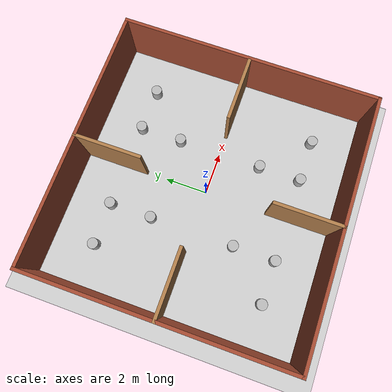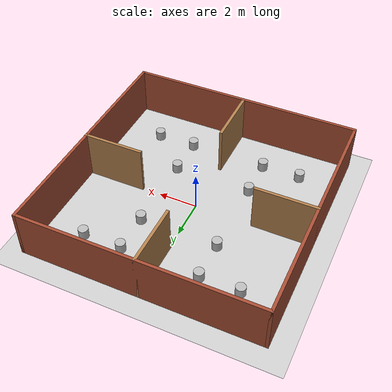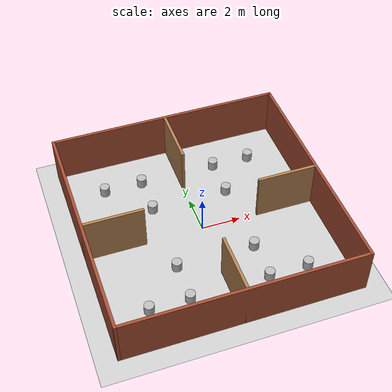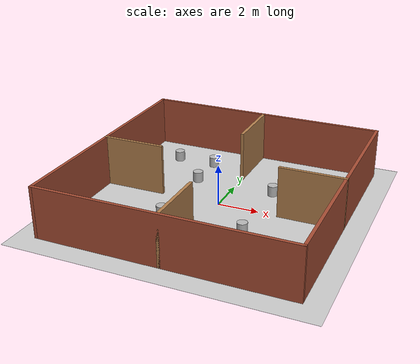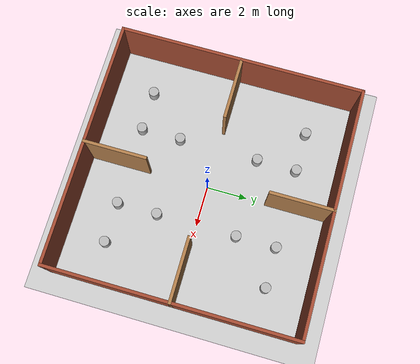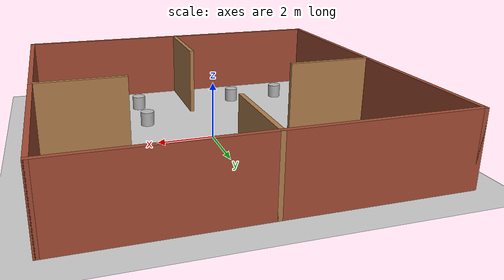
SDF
<?xml version="1.0"?>
<sdf version="1.6">
  <world name="default">

    <!-- Enable changing model pose in gazebo -->
    <plugin name="gazebo_ros_state" filename="libgazebo_ros_state.so">
      <ros>
        <namespace>/gazebo</namespace>
        <argument>--ros-args --remap model_states:=model_states_gazebo</argument>
        <argument>--ros-args --remap link_states:=link_states_gazebo</argument>
      </ros>
      <update_rate>50.0</update_rate>
    </plugin>

    <include>
      <uri>model://ground_plane</uri>
    </include>

    <include>
      <uri>model://sun</uri>
    </include>

    <scene>
      <shadows>false</shadows>
    </scene>

    <gui fullscreen='0'>
      <camera name='user_camera'>
        <pose frame=''>0.319654 -0.235002 9.29441 0 1.5138 0.009599</pose>
        <view_controller>orbit</view_controller>
        <projection_type>perspective</projection_type>
      </camera>
    </gui>

    <physics type="ode">
      <real_time_update_rate>1000.0</real_time_update_rate>
      <max_step_size>0.001</max_step_size>
      <real_time_factor>1</real_time_factor>
      <ode>
        <solver>
          <type>quick</type>
          <iters>150</iters>
          <precon_iters>0</precon_iters>
          <sor>1.400000</sor>
          <use_dynamic_moi_rescaling>1</use_dynamic_moi_rescaling>
        </solver>
        <constraints>
          <cfm>0.00001</cfm>
          <erp>0.2</erp>
          <contact_max_correcting_vel>2000.000000</contact_max_correcting_vel>
          <contact_surface_layer>0.01000</contact_surface_layer>
        </constraints>
      </ode>
    </physics>

    <model name="td7_training">
      <static>1</static>
      <include>
        <uri>model://td7_training</uri>
      </include>
    </model>

    <model name="obstacle_1">
      <pose>2 2 0 0 0 0</pose>
      <include>
        <uri>model://obstacle</uri>
      </include>
    </model>

    <model name="obstacle_2">
      <pose>2 -2 0 0 0 0</pose>
      <include>
        <uri>model://obstacle</uri>
      </include>
    </model>

    <model name="obstacle_3">
      <pose>-2 -2 0 0 0 0</pose>
      <include>
        <uri>model://obstacle</uri>
      </include>
    </model>

    <model name="obstacle_4">
      <pose>-2 2 0 0 0 0</pose>
      <include>
        <uri>model://obstacle</uri>
      </include>
    </model>

    <model name="obstacle_5">
      <pose>4 4 0 0 0 0</pose>
      <include>
        <uri>model://obstacle</uri>
      </include>
    </model>

    <model name="obstacle_6">
      <pose>4 -4 0 0 0 0</pose>
      <include>
        <uri>model://obstacle</uri>
      </include>
    </model>

    <model name="obstacle_7">
      <pose>-4 -4 0 0 0 0</pose>
      <include>
        <uri>model://obstacle</uri>
      </include>
    </model>

    <model name="obstacle_8">
      <pose>-4 4 0 0 0 0</pose>
      <include>
        <uri>model://obstacle</uri>
      </include>
    </model>

    <model name="obstacle_9">
      <pose>2 4 0 0 0 0</pose>
      <include>
        <uri>model://obstacle</uri>
      </include>
    </model>

    <model name="obstacle_10">
      <pose>2 -4 0 0 0 0</pose>
      <include>
        <uri>model://obstacle</uri>
      </include>
    </model>

    <model name="obstacle_11">
      <pose>-2 -4 0 0 0 0</pose>
      <include>
        <uri>model://obstacle</uri>
      </include>
    </model>

    <model name="obstacle_12">
      <pose>-2 4 0 0 0 0</pose>
      <include>
        <uri>model://obstacle</uri>
      </include>
    </model>

  </world>
</sdf>

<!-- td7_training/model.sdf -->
<sdf version='1.7'>
  <model name='td7_training'>
    <pose>0 0 0 0 -0 0</pose>
    <link name='Wall_0'>
      <collision name='Wall_0_Collision'>
        <geometry>
          <box>
            <size>12.15 0.15 2.5</size>
          </box>
        </geometry>
        <pose>0 0 1.25 0 -0 0</pose>
      </collision>
      <visual name='Wall_0_Visual'>
        <pose>0 0 1.25 0 -0 0</pose>
        <geometry>
          <box>
            <size>12.15 0.15 2.5</size>
          </box>
        </geometry>
        <material>
          <script>
            <uri>file://media/materials/scripts/gazebo.material</uri>
            <name>Gazebo/Bricks</name>
          </script>
          <ambient>1 1 1 1</ambient>
        </material>
        <meta>
          <layer>0</layer>
        </meta>
      </visual>
      <pose>0 6 0 0 -0 0</pose>
    </link>
    <link name='Wall_1'>
      <collision name='Wall_1_Collision'>
        <geometry>
          <box>
            <size>12.15 0.15 2.5</size>
          </box>
        </geometry>
        <pose>0 0 1.25 0 -0 0</pose>
      </collision>
      <visual name='Wall_1_Visual'>
        <pose>0 0 1.25 0 -0 0</pose>
        <geometry>
          <box>
            <size>12.15 0.15 2.5</size>
          </box>
        </geometry>
        <material>
          <script>
            <uri>file://media/materials/scripts/gazebo.material</uri>
            <name>Gazebo/Bricks</name>
          </script>
          <ambient>1 1 1 1</ambient>
        </material>
        <meta>
          <layer>0</layer>
        </meta>
      </visual>
      <pose>6 0 0 0 -0 -1.5708</pose>
    </link>
    <link name='Wall_11'>
      <collision name='Wall_11_Collision'>
        <geometry>
          <box>
            <size>3.15 0.15 2.5</size>
          </box>
        </geometry>
        <pose>0 0 1.25 0 -0 0</pose>
      </collision>
      <visual name='Wall_11_Visual'>
        <pose>0 0 1.25 0 -0 0</pose>
        <geometry>
          <box>
            <size>3.15 0.15 2.5</size>
          </box>
        </geometry>
        <material>
          <script>
            <uri>file://media/materials/scripts/gazebo.material</uri>
            <name>Gazebo/Wood</name>
          </script>
          <ambient>1 1 1 1</ambient>
        </material>
        <meta>
          <layer>0</layer>
        </meta>
      </visual>
      <pose>4.5 0 0 0 -0 3.14159</pose>
    </link>
    <link name='Wall_2'>
      <collision name='Wall_2_Collision'>
        <geometry>
          <box>
            <size>12.15 0.15 2.5</size>
          </box>
        </geometry>
        <pose>0 0 1.25 0 -0 0</pose>
      </collision>
      <visual name='Wall_2_Visual'>
        <pose>0 0 1.25 0 -0 0</pose>
        <geometry>
          <box>
            <size>12.15 0.15 2.5</size>
          </box>
        </geometry>
        <material>
          <script>
            <uri>file://media/materials/scripts/gazebo.material</uri>
            <name>Gazebo/Bricks</name>
          </script>
          <ambient>1 1 1 1</ambient>
        </material>
        <meta>
          <layer>0</layer>
        </meta>
      </visual>
      <pose>0 -6 0 0 -0 3.14159</pose>
    </link>
    <link name='Wall_3'>
      <collision name='Wall_3_Collision'>
        <geometry>
          <box>
            <size>12.15 0.15 2.5</size>
          </box>
        </geometry>
        <pose>0 0 1.25 0 -0 0</pose>
      </collision>
      <visual name='Wall_3_Visual'>
        <pose>0 0 1.25 0 -0 0</pose>
        <geometry>
          <box>
            <size>12.15 0.15 2.5</size>
          </box>
        </geometry>
        <material>
          <script>
            <uri>file://media/materials/scripts/gazebo.material</uri>
            <name>Gazebo/Bricks</name>
          </script>
          <ambient>1 1 1 1</ambient>
        </material>
        <meta>
          <layer>0</layer>
        </meta>
      </visual>
      <pose>-6 0 0 0 -0 1.5708</pose>
    </link>
    <link name='Wall_5'>
      <collision name='Wall_5_Collision'>
        <geometry>
          <box>
            <size>3.15 0.15 2.5</size>
          </box>
        </geometry>
        <pose>0 0 1.25 0 -0 0</pose>
      </collision>
      <visual name='Wall_5_Visual'>
        <pose>0 0 1.25 0 -0 0</pose>
        <geometry>
          <box>
            <size>3.15 0.15 2.5</size>
          </box>
        </geometry>
        <material>
          <script>
            <uri>file://media/materials/scripts/gazebo.material</uri>
            <name>Gazebo/Wood</name>
          </script>
          <ambient>1 1 1 1</ambient>
        </material>
        <meta>
          <layer>0</layer>
        </meta>
      </visual>
      <pose>0 4.5 0 0 -0 -1.5708</pose>
    </link>
    <link name='Wall_7'>
      <collision name='Wall_7_Collision'>
        <geometry>
          <box>
            <size>3.15 0.15 2.5</size>
          </box>
        </geometry>
        <pose>0 0 1.25 0 -0 0</pose>
      </collision>
      <visual name='Wall_7_Visual'>
        <pose>0 0 1.25 0 -0 0</pose>
        <geometry>
          <box>
            <size>3.15 0.15 2.5</size>
          </box>
        </geometry>
        <material>
          <script>
            <uri>file://media/materials/scripts/gazebo.material</uri>
            <name>Gazebo/Wood</name>
          </script>
          <ambient>1 1 1 1</ambient>
        </material>
        <meta>
          <layer>0</layer>
        </meta>
      </visual>
      <pose>0 -4.5 0 0 -0 1.5708</pose>
    </link>
    <link name='Wall_9'>
      <collision name='Wall_9_Collision'>
        <geometry>
          <box>
            <size>3.15 0.15 2.5</size>
          </box>
        </geometry>
        <pose>0 0 1.25 0 -0 0</pose>
      </collision>
      <visual name='Wall_9_Visual'>
        <pose>0 0 1.25 0 -0 0</pose>
        <geometry>
          <box>
            <size>3.15 0.15 2.5</size>
          </box>
        </geometry>
        <material>
          <script>
            <uri>file://media/materials/scripts/gazebo.material</uri>
            <name>Gazebo/Wood</name>
          </script>
          <ambient>1 1 1 1</ambient>
        </material>
        <meta>
          <layer>0</layer>
        </meta>
      </visual>
      <pose>-4.5 0 0 0 -0 0</pose>
    </link>
    <static>1</static>
  </model>
</sdf>

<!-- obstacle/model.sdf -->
<sdf version='1.7'>
    <model name="obstacle">
      <link name="link">
        <collision name="collision">
          <geometry>
            <cylinder>
              <radius>0.25</radius>
              <length>1.0</length>
            </cylinder>
          </geometry>
        </collision>

        <visual name="visual">
          <geometry>
            <cylinder>
              <radius>0.25</radius>
              <length>1.0</length>
            </cylinder>
          </geometry>
        </visual>
      </link>
    </model>
</sdf>
